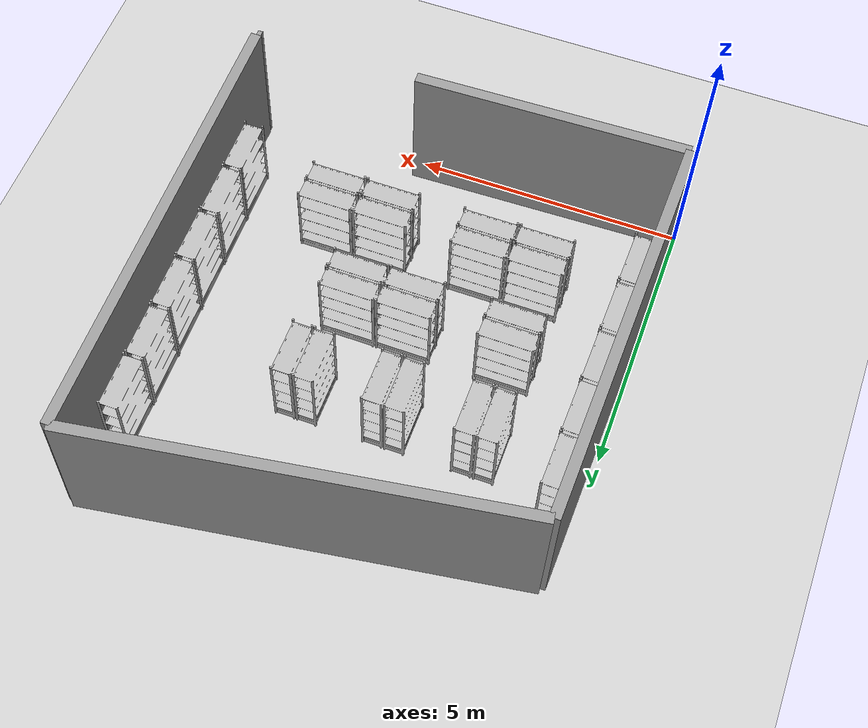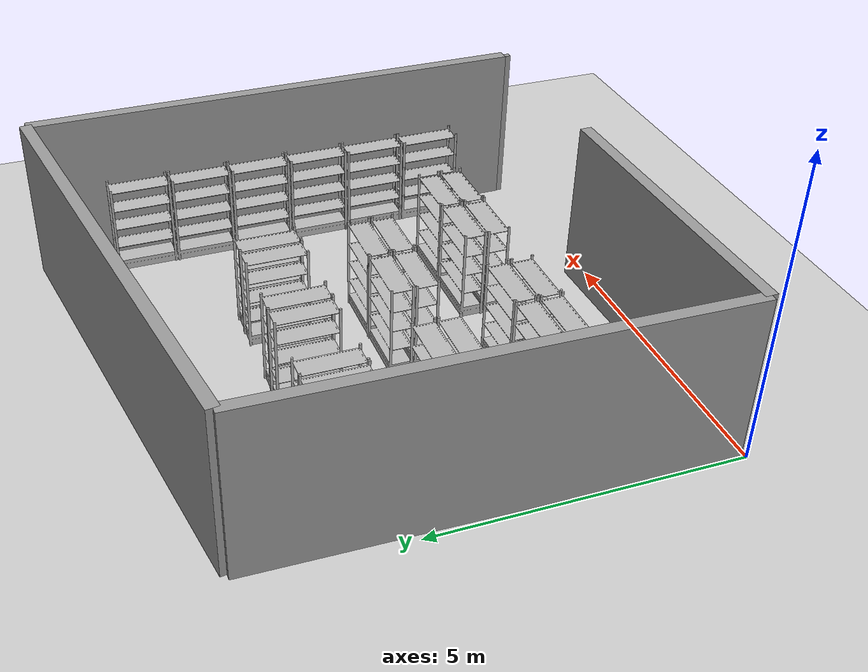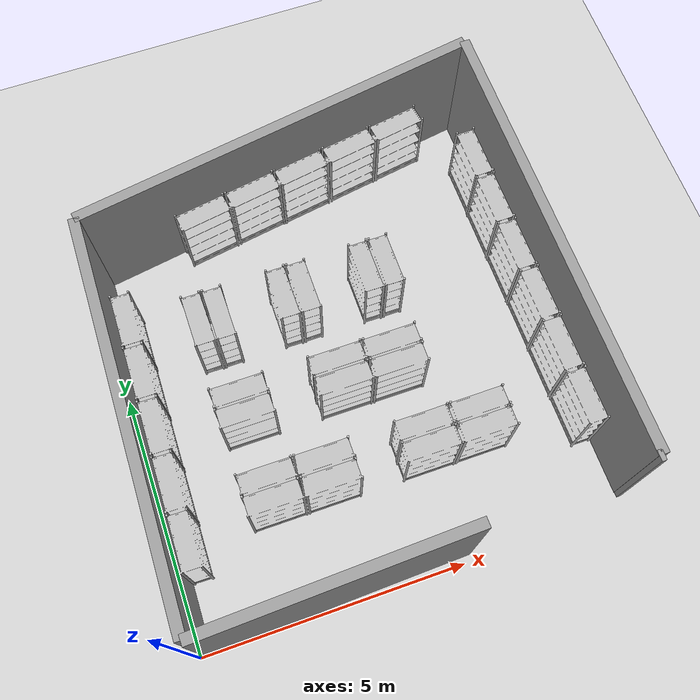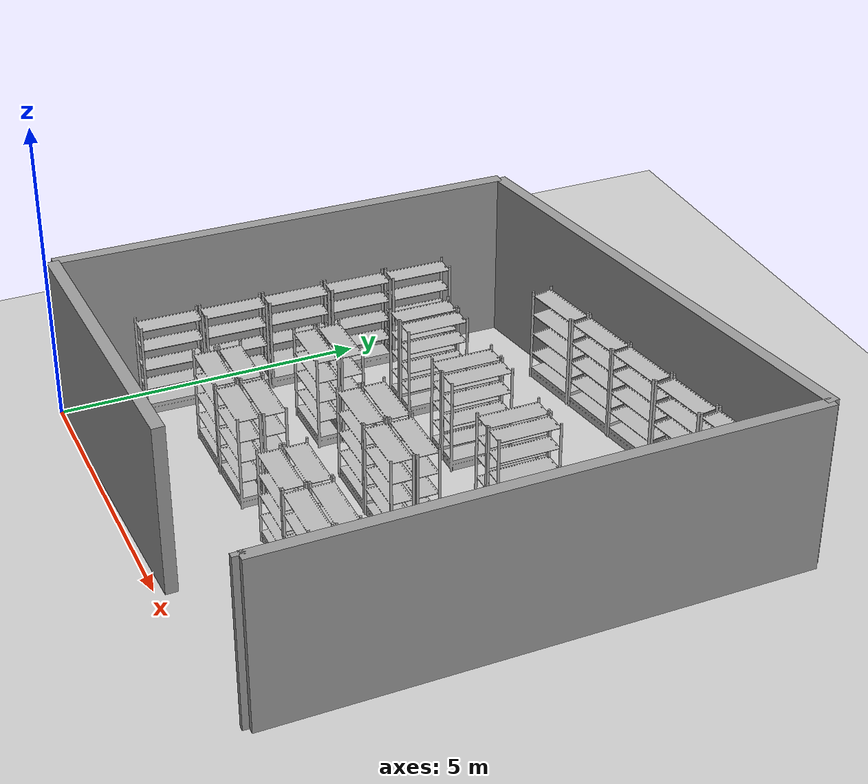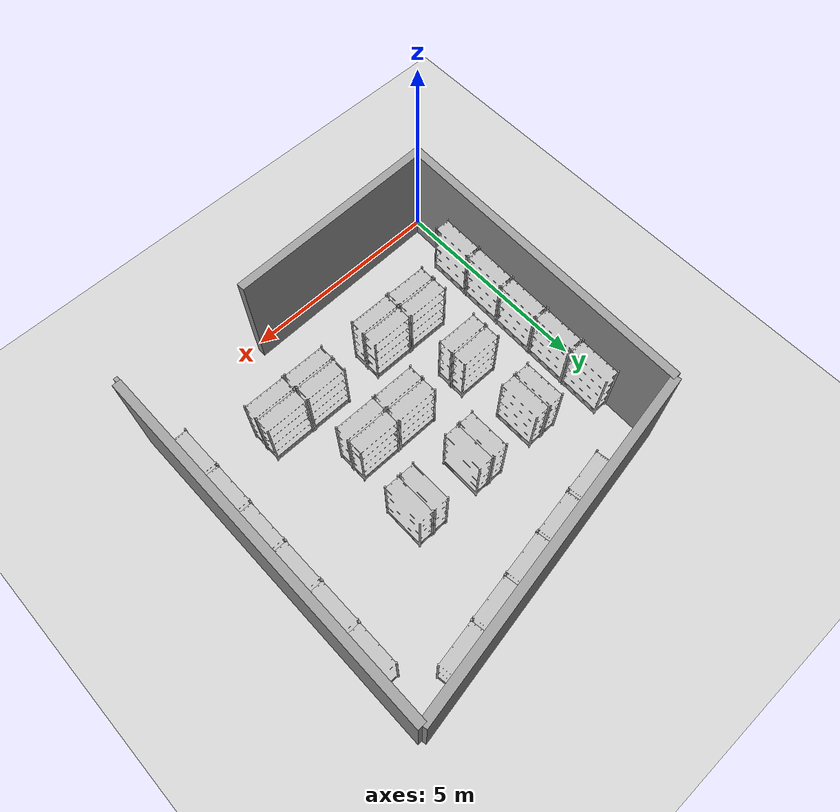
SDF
<sdf version="1.6">
  <world name="default">
    <light name="sun" type="directional">
      <cast_shadows>1</cast_shadows>
      <pose frame="">0 0 10 0 -0 0</pose>
      <diffuse>0.8 0.8 0.8 1</diffuse>
      <specular>0.2 0.2 0.2 1</specular>
      <attenuation>
        <range>1000</range>
        <constant>0.9</constant>
        <linear>0.01</linear>
        <quadratic>0.001</quadratic>
      </attenuation>
      <direction>-0.5 0.1 -0.9</direction>
    </light>
    <model name="ground_plane">
      <static>1</static>
      <link name="link">
        <collision name="collision">
          <geometry>
            <plane>
              <normal>0 0 1</normal>
              <size>100 100</size>
            </plane>
          </geometry>
          <surface>
            <contact>
              <collide_bitmask>65535</collide_bitmask>
              <ode />
            </contact>
            <friction>
              <ode>
                <mu>1000</mu>
                <mu2>1000</mu2>
              </ode>
              <torsional>
                <ode />
              </torsional>
            </friction>
            <bounce />
          </surface>
          <max_contacts>10</max_contacts>
        </collision>
        <visual name="visual">
          <cast_shadows>0</cast_shadows>
          <geometry>
            <plane>
              <normal>0 0 1</normal>
              <size>100 100</size>
            </plane>
          </geometry>
          <material>
            <script>
              <uri>file://media/materials/scripts/gazebo.material</uri>
              <name>Gazebo/Grey</name>
            </script>
          </material>
        </visual>
        <self_collide>0</self_collide>
        <enable_wind>0</enable_wind>
        <kinematic>0</kinematic>
      </link>
    </model>
    <gravity>0 0 -9.8</gravity>
    <magnetic_field>6e-06 2.3e-05 -4.2e-05</magnetic_field>
    <atmosphere type="adiabatic" />
    <physics name="default_physics" default="0" type="ode">
      <max_step_size>0.001</max_step_size>
      <real_time_factor>1</real_time_factor>
      <real_time_update_rate>1000</real_time_update_rate>
    </physics>
    <scene>
      <ambient>0.4 0.4 0.4 1</ambient>
      <background>0.7 0.7 0.7 1</background>
      <shadows>1</shadows>
    </scene>
    <audio>
      <device>default</device>
    </audio>
    <wind />
    <spherical_coordinates>
      <surface_model>EARTH_WGS84</surface_model>
      <latitude_deg>0</latitude_deg>
      <longitude_deg>0</longitude_deg>
      <elevation>0</elevation>
      <heading_deg>0</heading_deg>
    </spherical_coordinates>
    <gui fullscreen="0">
      <camera name="user_camera">
        <pose frame="">5.5458 -17.3868 19.7357 0 0.841797 1.67218</pose>
        <view_controller>orbit</view_controller>
        <projection_type>perspective</projection_type>
      </camera>
    </gui>
    <plugin name="ActorPosesPlugin" filename="libActorPosesPlugin.so" />
    <model name="store_shelf_moduled_0">
      <link name="link">
        <collision name="collision">
          <geometry>
            <mesh>
              <uri>model://store_shelf_moduled/meshes/store_shelf_moduled.dae</uri>
            </mesh>
          </geometry>
        </collision>
        <visual name="visual">
          <geometry>
            <mesh>
              <uri>model://store_shelf_moduled/meshes/store_shelf_moduled.dae</uri>
            </mesh>
          </geometry>
        </visual>
        <inertial>
          <mass>1000</mass>
          <inertia>
            <ixx>840083</ixx>
            <ixy>0</ixy>
            <ixz>0</ixz>
            <iyy>475500</iyy>
            <iyz>0</iyz>
            <izz>1.30208e+06</izz>
          </inertia>
        </inertial>
        <self_collide>0</self_collide>
        <enable_wind>0</enable_wind>
        <kinematic>0</kinematic>
      </link>
      <static>1</static>
      <pose frame="">8.120002 1.359416 0 0 0 1.576637</pose>
    </model>
    <model name="store_shelf_moduled_1">
      <link name="link">
        <collision name="collision">
          <geometry>
            <mesh>
              <uri>model://store_shelf_moduled/meshes/store_shelf_moduled.dae</uri>
            </mesh>
          </geometry>
        </collision>
        <visual name="visual">
          <geometry>
            <mesh>
              <uri>model://store_shelf_moduled/meshes/store_shelf_moduled.dae</uri>
            </mesh>
          </geometry>
        </visual>
        <inertial>
          <mass>1000</mass>
          <inertia>
            <ixx>840083</ixx>
            <ixy>0</ixy>
            <ixz>0</ixz>
            <iyy>475500</iyy>
            <iyz>0</iyz>
            <izz>1.30208e+06</izz>
          </inertia>
        </inertial>
        <self_collide>0</self_collide>
        <enable_wind>0</enable_wind>
        <kinematic>0</kinematic>
      </link>
      <static>1</static>
      <pose frame="">8.110002 2.419416 0 0 0 1.576637</pose>
    </model>
    <model name="store_shelf_moduled_2">
      <link name="link">
        <collision name="collision">
          <geometry>
            <mesh>
              <uri>model://store_shelf_moduled/meshes/store_shelf_moduled.dae</uri>
            </mesh>
          </geometry>
        </collision>
        <visual name="visual">
          <geometry>
            <mesh>
              <uri>model://store_shelf_moduled/meshes/store_shelf_moduled.dae</uri>
            </mesh>
          </geometry>
        </visual>
        <inertial>
          <mass>1000</mass>
          <inertia>
            <ixx>840083</ixx>
            <ixy>0</ixy>
            <ixz>0</ixz>
            <iyy>475500</iyy>
            <iyz>0</iyz>
            <izz>1.30208e+06</izz>
          </inertia>
        </inertial>
        <self_collide>0</self_collide>
        <enable_wind>0</enable_wind>
        <kinematic>0</kinematic>
      </link>
      <static>1</static>
      <pose frame="">8.110002 3.479416 0 0 0 1.576637</pose>
    </model>
    <model name="store_shelf_moduled_3">
      <link name="link">
        <collision name="collision">
          <geometry>
            <mesh>
              <uri>model://store_shelf_moduled/meshes/store_shelf_moduled.dae</uri>
            </mesh>
          </geometry>
        </collision>
        <visual name="visual">
          <geometry>
            <mesh>
              <uri>model://store_shelf_moduled/meshes/store_shelf_moduled.dae</uri>
            </mesh>
          </geometry>
        </visual>
        <inertial>
          <mass>1000</mass>
          <inertia>
            <ixx>840083</ixx>
            <ixy>0</ixy>
            <ixz>0</ixz>
            <iyy>475500</iyy>
            <iyz>0</iyz>
            <izz>1.30208e+06</izz>
          </inertia>
        </inertial>
        <self_collide>0</self_collide>
        <enable_wind>0</enable_wind>
        <kinematic>0</kinematic>
      </link>
      <static>1</static>
      <pose frame="">8.100002 4.539416 0 0 0 1.576637</pose>
    </model>
    <model name="store_shelf_moduled_4">
      <link name="link">
        <collision name="collision">
          <geometry>
            <mesh>
              <uri>model://store_shelf_moduled/meshes/store_shelf_moduled.dae</uri>
            </mesh>
          </geometry>
        </collision>
        <visual name="visual">
          <geometry>
            <mesh>
              <uri>model://store_shelf_moduled/meshes/store_shelf_moduled.dae</uri>
            </mesh>
          </geometry>
        </visual>
        <inertial>
          <mass>1000</mass>
          <inertia>
            <ixx>840083</ixx>
            <ixy>0</ixy>
            <ixz>0</ixz>
            <iyy>475500</iyy>
            <iyz>0</iyz>
            <izz>1.30208e+06</izz>
          </inertia>
        </inertial>
        <self_collide>0</self_collide>
        <enable_wind>0</enable_wind>
        <kinematic>0</kinematic>
      </link>
      <static>1</static>
      <pose frame="">8.090002 5.599416 0 0 0 1.576637</pose>
    </model>
    <model name="store_shelf_moduled_5">
      <link name="link">
        <collision name="collision">
          <geometry>
            <mesh>
              <uri>model://store_shelf_moduled/meshes/store_shelf_moduled.dae</uri>
            </mesh>
          </geometry>
        </collision>
        <visual name="visual">
          <geometry>
            <mesh>
              <uri>model://store_shelf_moduled/meshes/store_shelf_moduled.dae</uri>
            </mesh>
          </geometry>
        </visual>
        <inertial>
          <mass>1000</mass>
          <inertia>
            <ixx>840083</ixx>
            <ixy>0</ixy>
            <ixz>0</ixz>
            <iyy>475500</iyy>
            <iyz>0</iyz>
            <izz>1.30208e+06</izz>
          </inertia>
        </inertial>
        <self_collide>0</self_collide>
        <enable_wind>0</enable_wind>
        <kinematic>0</kinematic>
      </link>
      <static>1</static>
      <pose frame="">8.090002 6.659416 0 0 0 1.576637</pose>
    </model>
    <model name="store_shelf_moduled_6">
      <link name="link">
        <collision name="collision">
          <geometry>
            <mesh>
              <uri>model://store_shelf_moduled/meshes/store_shelf_moduled.dae</uri>
            </mesh>
          </geometry>
        </collision>
        <visual name="visual">
          <geometry>
            <mesh>
              <uri>model://store_shelf_moduled/meshes/store_shelf_moduled.dae</uri>
            </mesh>
          </geometry>
        </visual>
        <inertial>
          <mass>1000</mass>
          <inertia>
            <ixx>840083</ixx>
            <ixy>0</ixy>
            <ixz>0</ixz>
            <iyy>475500</iyy>
            <iyz>0</iyz>
            <izz>1.30208e+06</izz>
          </inertia>
        </inertial>
        <self_collide>0</self_collide>
        <enable_wind>0</enable_wind>
        <kinematic>0</kinematic>
      </link>
      <static>1</static>
      <pose frame="">7.145794 8.601254 0 0 0 -2.982986</pose>
    </model>
    <model name="store_shelf_moduled_7">
      <link name="link">
        <collision name="collision">
          <geometry>
            <mesh>
              <uri>model://store_shelf_moduled/meshes/store_shelf_moduled.dae</uri>
            </mesh>
          </geometry>
        </collision>
        <visual name="visual">
          <geometry>
            <mesh>
              <uri>model://store_shelf_moduled/meshes/store_shelf_moduled.dae</uri>
            </mesh>
          </geometry>
        </visual>
        <inertial>
          <mass>1000</mass>
          <inertia>
            <ixx>840083</ixx>
            <ixy>0</ixy>
            <ixz>0</ixz>
            <iyy>475500</iyy>
            <iyz>0</iyz>
            <izz>1.30208e+06</izz>
          </inertia>
        </inertial>
        <self_collide>0</self_collide>
        <enable_wind>0</enable_wind>
        <kinematic>0</kinematic>
      </link>
      <static>1</static>
      <pose frame="">6.095794 8.431255 0 0 0 -2.982986</pose>
    </model>
    <model name="store_shelf_moduled_8">
      <link name="link">
        <collision name="collision">
          <geometry>
            <mesh>
              <uri>model://store_shelf_moduled/meshes/store_shelf_moduled.dae</uri>
            </mesh>
          </geometry>
        </collision>
        <visual name="visual">
          <geometry>
            <mesh>
              <uri>model://store_shelf_moduled/meshes/store_shelf_moduled.dae</uri>
            </mesh>
          </geometry>
        </visual>
        <inertial>
          <mass>1000</mass>
          <inertia>
            <ixx>840083</ixx>
            <ixy>0</ixy>
            <ixz>0</ixz>
            <iyy>475500</iyy>
            <iyz>0</iyz>
            <izz>1.30208e+06</izz>
          </inertia>
        </inertial>
        <self_collide>0</self_collide>
        <enable_wind>0</enable_wind>
        <kinematic>0</kinematic>
      </link>
      <static>1</static>
      <pose frame="">5.045794 8.261255 0 0 0 -2.982986</pose>
    </model>
    <model name="store_shelf_moduled_9">
      <link name="link">
        <collision name="collision">
          <geometry>
            <mesh>
              <uri>model://store_shelf_moduled/meshes/store_shelf_moduled.dae</uri>
            </mesh>
          </geometry>
        </collision>
        <visual name="visual">
          <geometry>
            <mesh>
              <uri>model://store_shelf_moduled/meshes/store_shelf_moduled.dae</uri>
            </mesh>
          </geometry>
        </visual>
        <inertial>
          <mass>1000</mass>
          <inertia>
            <ixx>840083</ixx>
            <ixy>0</ixy>
            <ixz>0</ixz>
            <iyy>475500</iyy>
            <iyz>0</iyz>
            <izz>1.30208e+06</izz>
          </inertia>
        </inertial>
        <self_collide>0</self_collide>
        <enable_wind>0</enable_wind>
        <kinematic>0</kinematic>
      </link>
      <static>1</static>
      <pose frame="">4.005794 8.101254 0 0 0 -2.982986</pose>
    </model>
    <model name="store_shelf_moduled_10">
      <link name="link">
        <collision name="collision">
          <geometry>
            <mesh>
              <uri>model://store_shelf_moduled/meshes/store_shelf_moduled.dae</uri>
            </mesh>
          </geometry>
        </collision>
        <visual name="visual">
          <geometry>
            <mesh>
              <uri>model://store_shelf_moduled/meshes/store_shelf_moduled.dae</uri>
            </mesh>
          </geometry>
        </visual>
        <inertial>
          <mass>1000</mass>
          <inertia>
            <ixx>840083</ixx>
            <ixy>0</ixy>
            <ixz>0</ixz>
            <iyy>475500</iyy>
            <iyz>0</iyz>
            <izz>1.30208e+06</izz>
          </inertia>
        </inertial>
        <self_collide>0</self_collide>
        <enable_wind>0</enable_wind>
        <kinematic>0</kinematic>
      </link>
      <static>1</static>
      <pose frame="">2.955794 7.931255 0 0 0 -2.982986</pose>
    </model>
    <model name="store_shelf_moduled_11">
      <link name="link">
        <collision name="collision">
          <geometry>
            <mesh>
              <uri>model://store_shelf_moduled/meshes/store_shelf_moduled.dae</uri>
            </mesh>
          </geometry>
        </collision>
        <visual name="visual">
          <geometry>
            <mesh>
              <uri>model://store_shelf_moduled/meshes/store_shelf_moduled.dae</uri>
            </mesh>
          </geometry>
        </visual>
        <inertial>
          <mass>1000</mass>
          <inertia>
            <ixx>840083</ixx>
            <ixy>0</ixy>
            <ixz>0</ixz>
            <iyy>475500</iyy>
            <iyz>0</iyz>
            <izz>1.30208e+06</izz>
          </inertia>
        </inertial>
        <self_collide>0</self_collide>
        <enable_wind>0</enable_wind>
        <kinematic>0</kinematic>
      </link>
      <static>1</static>
      <pose frame="">0.3199826 6.538134 0 0 0 -1.589461</pose>
    </model>
    <model name="store_shelf_moduled_12">
      <link name="link">
        <collision name="collision">
          <geometry>
            <mesh>
              <uri>model://store_shelf_moduled/meshes/store_shelf_moduled.dae</uri>
            </mesh>
          </geometry>
        </collision>
        <visual name="visual">
          <geometry>
            <mesh>
              <uri>model://store_shelf_moduled/meshes/store_shelf_moduled.dae</uri>
            </mesh>
          </geometry>
        </visual>
        <inertial>
          <mass>1000</mass>
          <inertia>
            <ixx>840083</ixx>
            <ixy>0</ixy>
            <ixz>0</ixz>
            <iyy>475500</iyy>
            <iyz>0</iyz>
            <izz>1.30208e+06</izz>
          </inertia>
        </inertial>
        <self_collide>0</self_collide>
        <enable_wind>0</enable_wind>
        <kinematic>0</kinematic>
      </link>
      <static>1</static>
      <pose frame="">0.2999826 5.478134 0 0 0 -1.589461</pose>
    </model>
    <model name="store_shelf_moduled_13">
      <link name="link">
        <collision name="collision">
          <geometry>
            <mesh>
              <uri>model://store_shelf_moduled/meshes/store_shelf_moduled.dae</uri>
            </mesh>
          </geometry>
        </collision>
        <visual name="visual">
          <geometry>
            <mesh>
              <uri>model://store_shelf_moduled/meshes/store_shelf_moduled.dae</uri>
            </mesh>
          </geometry>
        </visual>
        <inertial>
          <mass>1000</mass>
          <inertia>
            <ixx>840083</ixx>
            <ixy>0</ixy>
            <ixz>0</ixz>
            <iyy>475500</iyy>
            <iyz>0</iyz>
            <izz>1.30208e+06</izz>
          </inertia>
        </inertial>
        <self_collide>0</self_collide>
        <enable_wind>0</enable_wind>
        <kinematic>0</kinematic>
      </link>
      <static>1</static>
      <pose frame="">0.2799826 4.418134 0 0 0 -1.589461</pose>
    </model>
    <model name="store_shelf_moduled_14">
      <link name="link">
        <collision name="collision">
          <geometry>
            <mesh>
              <uri>model://store_shelf_moduled/meshes/store_shelf_moduled.dae</uri>
            </mesh>
          </geometry>
        </collision>
        <visual name="visual">
          <geometry>
            <mesh>
              <uri>model://store_shelf_moduled/meshes/store_shelf_moduled.dae</uri>
            </mesh>
          </geometry>
        </visual>
        <inertial>
          <mass>1000</mass>
          <inertia>
            <ixx>840083</ixx>
            <ixy>0</ixy>
            <ixz>0</ixz>
            <iyy>475500</iyy>
            <iyz>0</iyz>
            <izz>1.30208e+06</izz>
          </inertia>
        </inertial>
        <self_collide>0</self_collide>
        <enable_wind>0</enable_wind>
        <kinematic>0</kinematic>
      </link>
      <static>1</static>
      <pose frame="">0.2599826 3.358134 0 0 0 -1.589461</pose>
    </model>
    <model name="store_shelf_moduled_15">
      <link name="link">
        <collision name="collision">
          <geometry>
            <mesh>
              <uri>model://store_shelf_moduled/meshes/store_shelf_moduled.dae</uri>
            </mesh>
          </geometry>
        </collision>
        <visual name="visual">
          <geometry>
            <mesh>
              <uri>model://store_shelf_moduled/meshes/store_shelf_moduled.dae</uri>
            </mesh>
          </geometry>
        </visual>
        <inertial>
          <mass>1000</mass>
          <inertia>
            <ixx>840083</ixx>
            <ixy>0</ixy>
            <ixz>0</ixz>
            <iyy>475500</iyy>
            <iyz>0</iyz>
            <izz>1.30208e+06</izz>
          </inertia>
        </inertial>
        <self_collide>0</self_collide>
        <enable_wind>0</enable_wind>
        <kinematic>0</kinematic>
      </link>
      <static>1</static>
      <pose frame="">0.2399826 2.298134 0 0 0 -1.589461</pose>
    </model>
    <model name="store_shelf_moduled_16">
      <link name="link">
        <collision name="collision">
          <geometry>
            <mesh>
              <uri>model://store_shelf_moduled/meshes/store_shelf_moduled.dae</uri>
            </mesh>
          </geometry>
        </collision>
        <visual name="visual">
          <geometry>
            <mesh>
              <uri>model://store_shelf_moduled/meshes/store_shelf_moduled.dae</uri>
            </mesh>
          </geometry>
        </visual>
        <inertial>
          <mass>1000</mass>
          <inertia>
            <ixx>840083</ixx>
            <ixy>0</ixy>
            <ixz>0</ixz>
            <iyy>475500</iyy>
            <iyz>0</iyz>
            <izz>1.30208e+06</izz>
          </inertia>
        </inertial>
        <self_collide>0</self_collide>
        <enable_wind>0</enable_wind>
        <kinematic>0</kinematic>
      </link>
      <static>1</static>
      <pose frame="">5.24 5.04 0 0 0 1.570796</pose>
    </model>
    <model name="store_shelf_moduled_17">
      <link name="link">
        <collision name="collision">
          <geometry>
            <mesh>
              <uri>model://store_shelf_moduled/meshes/store_shelf_moduled.dae</uri>
            </mesh>
          </geometry>
        </collision>
        <visual name="visual">
          <geometry>
            <mesh>
              <uri>model://store_shelf_moduled/meshes/store_shelf_moduled.dae</uri>
            </mesh>
          </geometry>
        </visual>
        <inertial>
          <mass>1000</mass>
          <inertia>
            <ixx>840083</ixx>
            <ixy>0</ixy>
            <ixz>0</ixz>
            <iyy>475500</iyy>
            <iyz>0</iyz>
            <izz>1.30208e+06</izz>
          </inertia>
        </inertial>
        <self_collide>0</self_collide>
        <enable_wind>0</enable_wind>
        <kinematic>0</kinematic>
      </link>
      <static>1</static>
      <pose frame="">5.24 6.1 0 0 0 -1.570796</pose>
    </model>
    <model name="store_shelf_moduled_18">
      <link name="link">
        <collision name="collision">
          <geometry>
            <mesh>
              <uri>model://store_shelf_moduled/meshes/store_shelf_moduled.dae</uri>
            </mesh>
          </geometry>
        </collision>
        <visual name="visual">
          <geometry>
            <mesh>
              <uri>model://store_shelf_moduled/meshes/store_shelf_moduled.dae</uri>
            </mesh>
          </geometry>
        </visual>
        <inertial>
          <mass>1000</mass>
          <inertia>
            <ixx>840083</ixx>
            <ixy>0</ixy>
            <ixz>0</ixz>
            <iyy>475500</iyy>
            <iyz>0</iyz>
            <izz>1.30208e+06</izz>
          </inertia>
        </inertial>
        <self_collide>0</self_collide>
        <enable_wind>0</enable_wind>
        <kinematic>0</kinematic>
      </link>
      <static>1</static>
      <pose frame="">3.6 5.04 0 0 0 1.570796</pose>
    </model>
    <model name="store_shelf_moduled_19">
      <link name="link">
        <collision name="collision">
          <geometry>
            <mesh>
              <uri>model://store_shelf_moduled/meshes/store_shelf_moduled.dae</uri>
            </mesh>
          </geometry>
        </collision>
        <visual name="visual">
          <geometry>
            <mesh>
              <uri>model://store_shelf_moduled/meshes/store_shelf_moduled.dae</uri>
            </mesh>
          </geometry>
        </visual>
        <inertial>
          <mass>1000</mass>
          <inertia>
            <ixx>840083</ixx>
            <ixy>0</ixy>
            <ixz>0</ixz>
            <iyy>475500</iyy>
            <iyz>0</iyz>
            <izz>1.30208e+06</izz>
          </inertia>
        </inertial>
        <self_collide>0</self_collide>
        <enable_wind>0</enable_wind>
        <kinematic>0</kinematic>
      </link>
      <static>1</static>
      <pose frame="">3.6 6.1 0 0 0 -1.570796</pose>
    </model>
    <model name="store_shelf_moduled_20">
      <link name="link">
        <collision name="collision">
          <geometry>
            <mesh>
              <uri>model://store_shelf_moduled/meshes/store_shelf_moduled.dae</uri>
            </mesh>
          </geometry>
        </collision>
        <visual name="visual">
          <geometry>
            <mesh>
              <uri>model://store_shelf_moduled/meshes/store_shelf_moduled.dae</uri>
            </mesh>
          </geometry>
        </visual>
        <inertial>
          <mass>1000</mass>
          <inertia>
            <ixx>840083</ixx>
            <ixy>0</ixy>
            <ixz>0</ixz>
            <iyy>475500</iyy>
            <iyz>0</iyz>
            <izz>1.30208e+06</izz>
          </inertia>
        </inertial>
        <self_collide>0</self_collide>
        <enable_wind>0</enable_wind>
        <kinematic>0</kinematic>
      </link>
      <static>1</static>
      <pose frame="">3.4 3.82 0 0 0 0</pose>
    </model>
    <model name="store_shelf_moduled_21">
      <link name="link">
        <collision name="collision">
          <geometry>
            <mesh>
              <uri>model://store_shelf_moduled/meshes/store_shelf_moduled.dae</uri>
            </mesh>
          </geometry>
        </collision>
        <visual name="visual">
          <geometry>
            <mesh>
              <uri>model://store_shelf_moduled/meshes/store_shelf_moduled.dae</uri>
            </mesh>
          </geometry>
        </visual>
        <inertial>
          <mass>1000</mass>
          <inertia>
            <ixx>840083</ixx>
            <ixy>0</ixy>
            <ixz>0</ixz>
            <iyy>475500</iyy>
            <iyz>0</iyz>
            <izz>1.30208e+06</izz>
          </inertia>
        </inertial>
        <self_collide>0</self_collide>
        <enable_wind>0</enable_wind>
        <kinematic>0</kinematic>
      </link>
      <static>1</static>
      <pose frame="">4.46 3.82 0 0 0 -3.141593</pose>
    </model>
    <model name="store_shelf_moduled_22">
      <link name="link">
        <collision name="collision">
          <geometry>
            <mesh>
              <uri>model://store_shelf_moduled/meshes/store_shelf_moduled.dae</uri>
            </mesh>
          </geometry>
        </collision>
        <visual name="visual">
          <geometry>
            <mesh>
              <uri>model://store_shelf_moduled/meshes/store_shelf_moduled.dae</uri>
            </mesh>
          </geometry>
        </visual>
        <inertial>
          <mass>1000</mass>
          <inertia>
            <ixx>840083</ixx>
            <ixy>0</ixy>
            <ixz>0</ixz>
            <iyy>475500</iyy>
            <iyz>0</iyz>
            <izz>1.30208e+06</izz>
          </inertia>
        </inertial>
        <self_collide>0</self_collide>
        <enable_wind>0</enable_wind>
        <kinematic>0</kinematic>
      </link>
      <static>1</static>
      <pose frame="">4.46 3.82 0 0 0 0</pose>
    </model>
    <model name="store_shelf_moduled_23">
      <link name="link">
        <collision name="collision">
          <geometry>
            <mesh>
              <uri>model://store_shelf_moduled/meshes/store_shelf_moduled.dae</uri>
            </mesh>
          </geometry>
        </collision>
        <visual name="visual">
          <geometry>
            <mesh>
              <uri>model://store_shelf_moduled/meshes/store_shelf_moduled.dae</uri>
            </mesh>
          </geometry>
        </visual>
        <inertial>
          <mass>1000</mass>
          <inertia>
            <ixx>840083</ixx>
            <ixy>0</ixy>
            <ixz>0</ixz>
            <iyy>475500</iyy>
            <iyz>0</iyz>
            <izz>1.30208e+06</izz>
          </inertia>
        </inertial>
        <self_collide>0</self_collide>
        <enable_wind>0</enable_wind>
        <kinematic>0</kinematic>
      </link>
      <static>1</static>
      <pose frame="">5.52 3.82 0 0 0 -3.141593</pose>
    </model>
    <model name="store_shelf_moduled_24">
      <link name="link">
        <collision name="collision">
          <geometry>
            <mesh>
              <uri>model://store_shelf_moduled/meshes/store_shelf_moduled.dae</uri>
            </mesh>
          </geometry>
        </collision>
        <visual name="visual">
          <geometry>
            <mesh>
              <uri>model://store_shelf_moduled/meshes/store_shelf_moduled.dae</uri>
            </mesh>
          </geometry>
        </visual>
        <inertial>
          <mass>1000</mass>
          <inertia>
            <ixx>840083</ixx>
            <ixy>0</ixy>
            <ixz>0</ixz>
            <iyy>475500</iyy>
            <iyz>0</iyz>
            <izz>1.30208e+06</izz>
          </inertia>
        </inertial>
        <self_collide>0</self_collide>
        <enable_wind>0</enable_wind>
        <kinematic>0</kinematic>
      </link>
      <static>1</static>
      <pose frame="">1.96 5.04 0 0 0 1.570796</pose>
    </model>
    <model name="store_shelf_moduled_25">
      <link name="link">
        <collision name="collision">
          <geometry>
            <mesh>
              <uri>model://store_shelf_moduled/meshes/store_shelf_moduled.dae</uri>
            </mesh>
          </geometry>
        </collision>
        <visual name="visual">
          <geometry>
            <mesh>
              <uri>model://store_shelf_moduled/meshes/store_shelf_moduled.dae</uri>
            </mesh>
          </geometry>
        </visual>
        <inertial>
          <mass>1000</mass>
          <inertia>
            <ixx>840083</ixx>
            <ixy>0</ixy>
            <ixz>0</ixz>
            <iyy>475500</iyy>
            <iyz>0</iyz>
            <izz>1.30208e+06</izz>
          </inertia>
        </inertial>
        <self_collide>0</self_collide>
        <enable_wind>0</enable_wind>
        <kinematic>0</kinematic>
      </link>
      <static>1</static>
      <pose frame="">1.96 6.1 0 0 0 -1.570796</pose>
    </model>
    <model name="store_shelf_moduled_26">
      <link name="link">
        <collision name="collision">
          <geometry>
            <mesh>
              <uri>model://store_shelf_moduled/meshes/store_shelf_moduled.dae</uri>
            </mesh>
          </geometry>
        </collision>
        <visual name="visual">
          <geometry>
            <mesh>
              <uri>model://store_shelf_moduled/meshes/store_shelf_moduled.dae</uri>
            </mesh>
          </geometry>
        </visual>
        <inertial>
          <mass>1000</mass>
          <inertia>
            <ixx>840083</ixx>
            <ixy>0</ixy>
            <ixz>0</ixz>
            <iyy>475500</iyy>
            <iyz>0</iyz>
            <izz>1.30208e+06</izz>
          </inertia>
        </inertial>
        <self_collide>0</self_collide>
        <enable_wind>0</enable_wind>
        <kinematic>0</kinematic>
      </link>
      <static>1</static>
      <pose frame="">1.54 3.82 0 0 0 0</pose>
    </model>
    <model name="store_shelf_moduled_27">
      <link name="link">
        <collision name="collision">
          <geometry>
            <mesh>
              <uri>model://store_shelf_moduled/meshes/store_shelf_moduled.dae</uri>
            </mesh>
          </geometry>
        </collision>
        <visual name="visual">
          <geometry>
            <mesh>
              <uri>model://store_shelf_moduled/meshes/store_shelf_moduled.dae</uri>
            </mesh>
          </geometry>
        </visual>
        <inertial>
          <mass>1000</mass>
          <inertia>
            <ixx>840083</ixx>
            <ixy>0</ixy>
            <ixz>0</ixz>
            <iyy>475500</iyy>
            <iyz>0</iyz>
            <izz>1.30208e+06</izz>
          </inertia>
        </inertial>
        <self_collide>0</self_collide>
        <enable_wind>0</enable_wind>
        <kinematic>0</kinematic>
      </link>
      <static>1</static>
      <pose frame="">2.6 3.82 0 0 0 -3.141593</pose>
    </model>
    <model name="store_shelf_moduled_28">
      <link name="link">
        <collision name="collision">
          <geometry>
            <mesh>
              <uri>model://store_shelf_moduled/meshes/store_shelf_moduled.dae</uri>
            </mesh>
          </geometry>
        </collision>
        <visual name="visual">
          <geometry>
            <mesh>
              <uri>model://store_shelf_moduled/meshes/store_shelf_moduled.dae</uri>
            </mesh>
          </geometry>
        </visual>
        <inertial>
          <mass>1000</mass>
          <inertia>
            <ixx>840083</ixx>
            <ixy>0</ixy>
            <ixz>0</ixz>
            <iyy>475500</iyy>
            <iyz>0</iyz>
            <izz>1.30208e+06</izz>
          </inertia>
        </inertial>
        <self_collide>0</self_collide>
        <enable_wind>0</enable_wind>
        <kinematic>0</kinematic>
      </link>
      <static>1</static>
      <pose frame="">1.54 2.18 0 0 0 0</pose>
    </model>
    <model name="store_shelf_moduled_29">
      <link name="link">
        <collision name="collision">
          <geometry>
            <mesh>
              <uri>model://store_shelf_moduled/meshes/store_shelf_moduled.dae</uri>
            </mesh>
          </geometry>
        </collision>
        <visual name="visual">
          <geometry>
            <mesh>
              <uri>model://store_shelf_moduled/meshes/store_shelf_moduled.dae</uri>
            </mesh>
          </geometry>
        </visual>
        <inertial>
          <mass>1000</mass>
          <inertia>
            <ixx>840083</ixx>
            <ixy>0</ixy>
            <ixz>0</ixz>
            <iyy>475500</iyy>
            <iyz>0</iyz>
            <izz>1.30208e+06</izz>
          </inertia>
        </inertial>
        <self_collide>0</self_collide>
        <enable_wind>0</enable_wind>
        <kinematic>0</kinematic>
      </link>
      <static>1</static>
      <pose frame="">2.6 2.18 0 0 0 -3.141593</pose>
    </model>
    <model name="store_shelf_moduled_30">
      <link name="link">
        <collision name="collision">
          <geometry>
            <mesh>
              <uri>model://store_shelf_moduled/meshes/store_shelf_moduled.dae</uri>
            </mesh>
          </geometry>
        </collision>
        <visual name="visual">
          <geometry>
            <mesh>
              <uri>model://store_shelf_moduled/meshes/store_shelf_moduled.dae</uri>
            </mesh>
          </geometry>
        </visual>
        <inertial>
          <mass>1000</mass>
          <inertia>
            <ixx>840083</ixx>
            <ixy>0</ixy>
            <ixz>0</ixz>
            <iyy>475500</iyy>
            <iyz>0</iyz>
            <izz>1.30208e+06</izz>
          </inertia>
        </inertial>
        <self_collide>0</self_collide>
        <enable_wind>0</enable_wind>
        <kinematic>0</kinematic>
      </link>
      <static>1</static>
      <pose frame="">2.6 2.18 0 0 0 0</pose>
    </model>
    <model name="store_shelf_moduled_31">
      <link name="link">
        <collision name="collision">
          <geometry>
            <mesh>
              <uri>model://store_shelf_moduled/meshes/store_shelf_moduled.dae</uri>
            </mesh>
          </geometry>
        </collision>
        <visual name="visual">
          <geometry>
            <mesh>
              <uri>model://store_shelf_moduled/meshes/store_shelf_moduled.dae</uri>
            </mesh>
          </geometry>
        </visual>
        <inertial>
          <mass>1000</mass>
          <inertia>
            <ixx>840083</ixx>
            <ixy>0</ixy>
            <ixz>0</ixz>
            <iyy>475500</iyy>
            <iyz>0</iyz>
            <izz>1.30208e+06</izz>
          </inertia>
        </inertial>
        <self_collide>0</self_collide>
        <enable_wind>0</enable_wind>
        <kinematic>0</kinematic>
      </link>
      <static>1</static>
      <pose frame="">3.66 2.18 0 0 0 -3.141593</pose>
    </model>
    <model name="store_shelf_moduled_32">
      <link name="link">
        <collision name="collision">
          <geometry>
            <mesh>
              <uri>model://store_shelf_moduled/meshes/store_shelf_moduled.dae</uri>
            </mesh>
          </geometry>
        </collision>
        <visual name="visual">
          <geometry>
            <mesh>
              <uri>model://store_shelf_moduled/meshes/store_shelf_moduled.dae</uri>
            </mesh>
          </geometry>
        </visual>
        <inertial>
          <mass>1000</mass>
          <inertia>
            <ixx>840083</ixx>
            <ixy>0</ixy>
            <ixz>0</ixz>
            <iyy>475500</iyy>
            <iyz>0</iyz>
            <izz>1.30208e+06</izz>
          </inertia>
        </inertial>
        <self_collide>0</self_collide>
        <enable_wind>0</enable_wind>
        <kinematic>0</kinematic>
      </link>
      <static>1</static>
      <pose frame="">4.46 2.18 0 0 0 0</pose>
    </model>
    <model name="store_shelf_moduled_33">
      <link name="link">
        <collision name="collision">
          <geometry>
            <mesh>
              <uri>model://store_shelf_moduled/meshes/store_shelf_moduled.dae</uri>
            </mesh>
          </geometry>
        </collision>
        <visual name="visual">
          <geometry>
            <mesh>
              <uri>model://store_shelf_moduled/meshes/store_shelf_moduled.dae</uri>
            </mesh>
          </geometry>
        </visual>
        <inertial>
          <mass>1000</mass>
          <inertia>
            <ixx>840083</ixx>
            <ixy>0</ixy>
            <ixz>0</ixz>
            <iyy>475500</iyy>
            <iyz>0</iyz>
            <izz>1.30208e+06</izz>
          </inertia>
        </inertial>
        <self_collide>0</self_collide>
        <enable_wind>0</enable_wind>
        <kinematic>0</kinematic>
      </link>
      <static>1</static>
      <pose frame="">5.52 2.18 0 0 0 -3.141593</pose>
    </model>
    <model name="store_shelf_moduled_34">
      <link name="link">
        <collision name="collision">
          <geometry>
            <mesh>
              <uri>model://store_shelf_moduled/meshes/store_shelf_moduled.dae</uri>
            </mesh>
          </geometry>
        </collision>
        <visual name="visual">
          <geometry>
            <mesh>
              <uri>model://store_shelf_moduled/meshes/store_shelf_moduled.dae</uri>
            </mesh>
          </geometry>
        </visual>
        <inertial>
          <mass>1000</mass>
          <inertia>
            <ixx>840083</ixx>
            <ixy>0</ixy>
            <ixz>0</ixz>
            <iyy>475500</iyy>
            <iyz>0</iyz>
            <izz>1.30208e+06</izz>
          </inertia>
        </inertial>
        <self_collide>0</self_collide>
        <enable_wind>0</enable_wind>
        <kinematic>0</kinematic>
      </link>
      <static>1</static>
      <pose frame="">5.52 2.18 0 0 0 0</pose>
    </model>
    <model name="store_shelf_moduled_35">
      <link name="link">
        <collision name="collision">
          <geometry>
            <mesh>
              <uri>model://store_shelf_moduled/meshes/store_shelf_moduled.dae</uri>
            </mesh>
          </geometry>
        </collision>
        <visual name="visual">
          <geometry>
            <mesh>
              <uri>model://store_shelf_moduled/meshes/store_shelf_moduled.dae</uri>
            </mesh>
          </geometry>
        </visual>
        <inertial>
          <mass>1000</mass>
          <inertia>
            <ixx>840083</ixx>
            <ixy>0</ixy>
            <ixz>0</ixz>
            <iyy>475500</iyy>
            <iyz>0</iyz>
            <izz>1.30208e+06</izz>
          </inertia>
        </inertial>
        <self_collide>0</self_collide>
        <enable_wind>0</enable_wind>
        <kinematic>0</kinematic>
      </link>
      <static>1</static>
      <pose frame="">6.58 2.18 0 0 0 -3.141593</pose>
    </model>
    <model name="grey_wall0">
      <static>1</static>
      <link name="link">
        <pose frame="">2.625 0.165 1.4 0 0 0.02573689</pose>
        <visual name="visual">
          <cast_shadows>0</cast_shadows>
          <geometry>
            <box>
              <size>5.051673 0.2 2.8</size>
            </box>
          </geometry>
          <material>
            <name>vrc/grey_wall</name>
            <script>
              <uri>model://grey_wall/materials/scripts</uri>
              <uri>model://grey_wall/materials/textures</uri>
              <name>vrc/grey_wall</name>
            </script>
          </material>
        </visual>
        <collision name="collision">
          <geometry>
            <box>
              <size>5.051673 0.2 2.8</size>
            </box>
          </geometry>
          <max_contacts>5</max_contacts>
        </collision>
      </link>
    </model>
    <model name="grey_wall1">
      <static>1</static>
      <link name="link">
        <pose frame="">8.185 0.31 1.4 0 0 0</pose>
        <visual name="visual">
          <cast_shadows>0</cast_shadows>
          <geometry>
            <box>
              <size>0.09 0.2 2.8</size>
            </box>
          </geometry>
          <material>
            <name>vrc/grey_wall</name>
            <script>
              <uri>model://grey_wall/materials/scripts</uri>
              <uri>model://grey_wall/materials/textures</uri>
              <name>vrc/grey_wall</name>
            </script>
          </material>
        </visual>
        <collision name="collision">
          <geometry>
            <box>
              <size>0.09 0.2 2.8</size>
            </box>
          </geometry>
          <max_contacts>5</max_contacts>
        </collision>
      </link>
    </model>
    <model name="grey_wall2">
      <static>1</static>
      <link name="link">
        <pose frame="">8.205 4.59 1.4 0 0 1.576637</pose>
        <visual name="visual">
          <cast_shadows>0</cast_shadows>
          <geometry>
            <box>
              <size>8.560146 0.2 2.8</size>
            </box>
          </geometry>
          <material>
            <name>vrc/grey_wall</name>
            <script>
              <uri>model://grey_wall/materials/scripts</uri>
              <uri>model://grey_wall/materials/textures</uri>
              <name>vrc/grey_wall</name>
            </script>
          </material>
        </visual>
        <collision name="collision">
          <geometry>
            <box>
              <size>8.560146 0.2 2.8</size>
            </box>
          </geometry>
          <max_contacts>5</max_contacts>
        </collision>
      </link>
    </model>
    <model name="grey_wall3">
      <static>1</static>
      <link name="link">
        <pose frame="">4.21 8.235 1.4 0 0 -2.982986</pose>
        <visual name="visual">
          <cast_shadows>0</cast_shadows>
          <geometry>
            <box>
              <size>8.040927 0.2 2.8</size>
            </box>
          </geometry>
          <material>
            <name>vrc/grey_wall</name>
            <script>
              <uri>model://grey_wall/materials/scripts</uri>
              <uri>model://grey_wall/materials/textures</uri>
              <name>vrc/grey_wall</name>
            </script>
          </material>
        </visual>
        <collision name="collision">
          <geometry>
            <box>
              <size>8.040927 0.2 2.8</size>
            </box>
          </geometry>
          <max_contacts>5</max_contacts>
        </collision>
      </link>
    </model>
    <model name="grey_wall4">
      <static>1</static>
      <link name="link">
        <pose frame="">0.17 3.85 1.4 0 0 -1.589461</pose>
        <visual name="visual">
          <cast_shadows>0</cast_shadows>
          <geometry>
            <box>
              <size>7.501307 0.2 2.8</size>
            </box>
          </geometry>
          <material>
            <name>vrc/grey_wall</name>
            <script>
              <uri>model://grey_wall/materials/scripts</uri>
              <uri>model://grey_wall/materials/textures</uri>
              <name>vrc/grey_wall</name>
            </script>
          </material>
        </visual>
        <collision name="collision">
          <geometry>
            <box>
              <size>7.501307 0.2 2.8</size>
            </box>
          </geometry>
          <max_contacts>5</max_contacts>
        </collision>
      </link>
    </model>
  </world>
</sdf>
